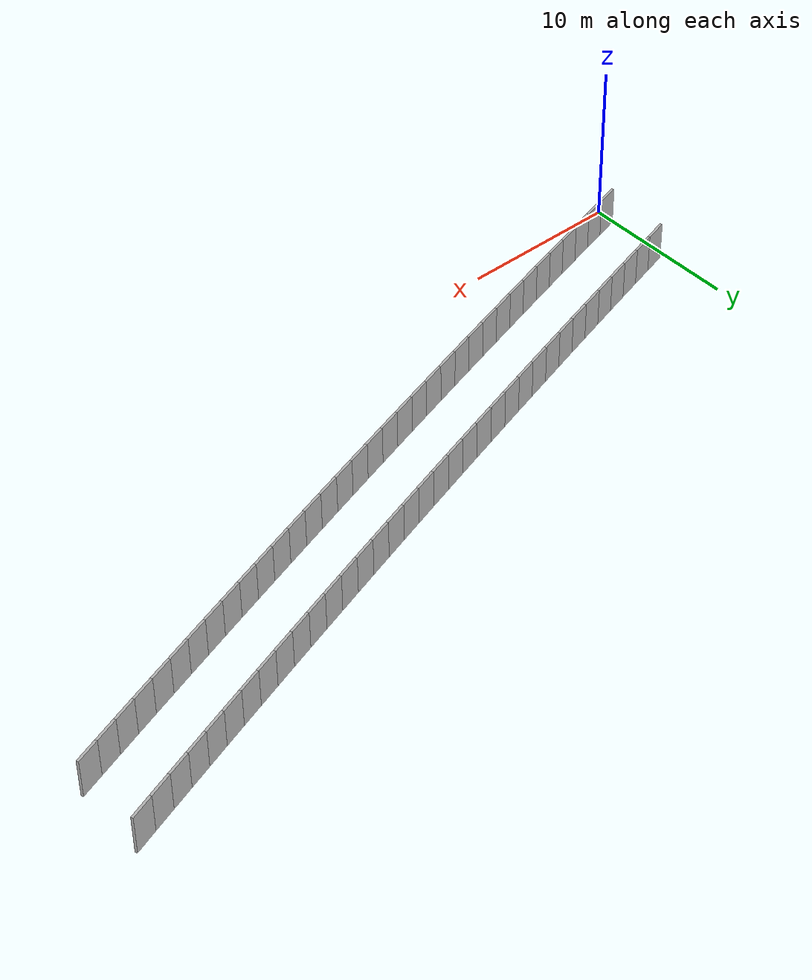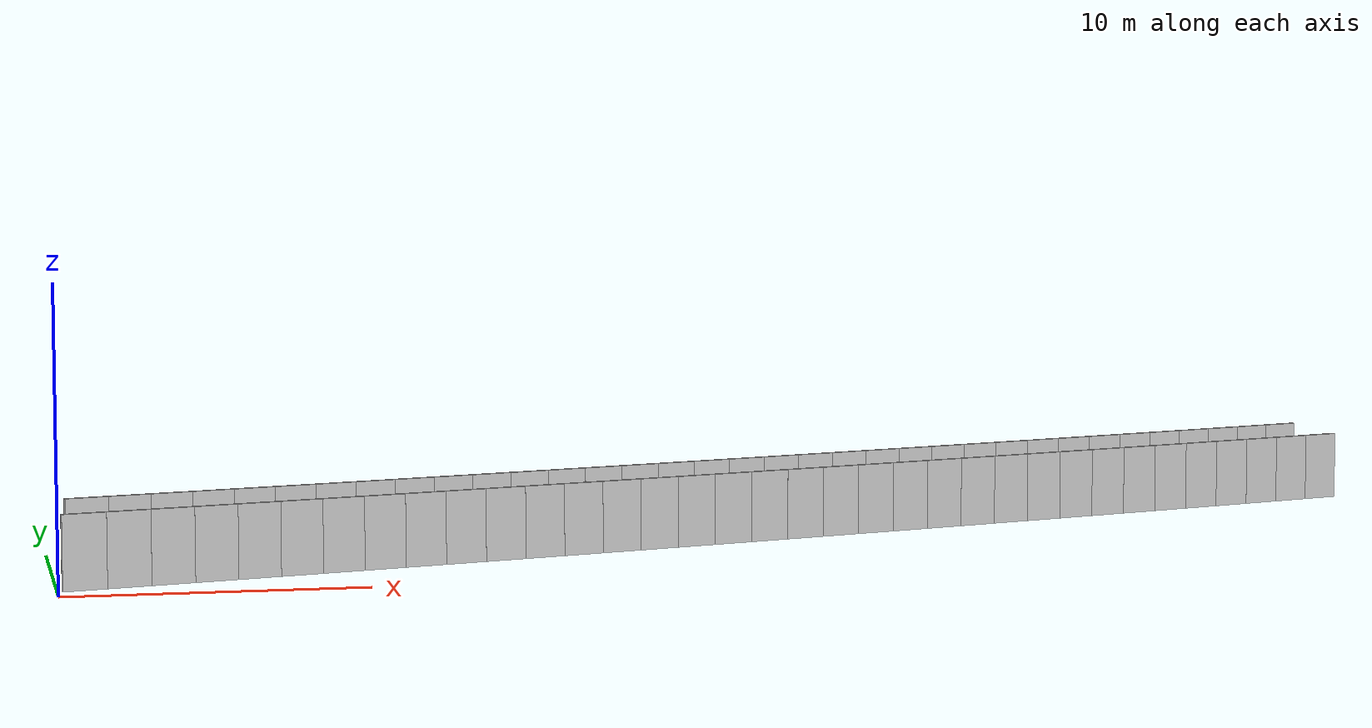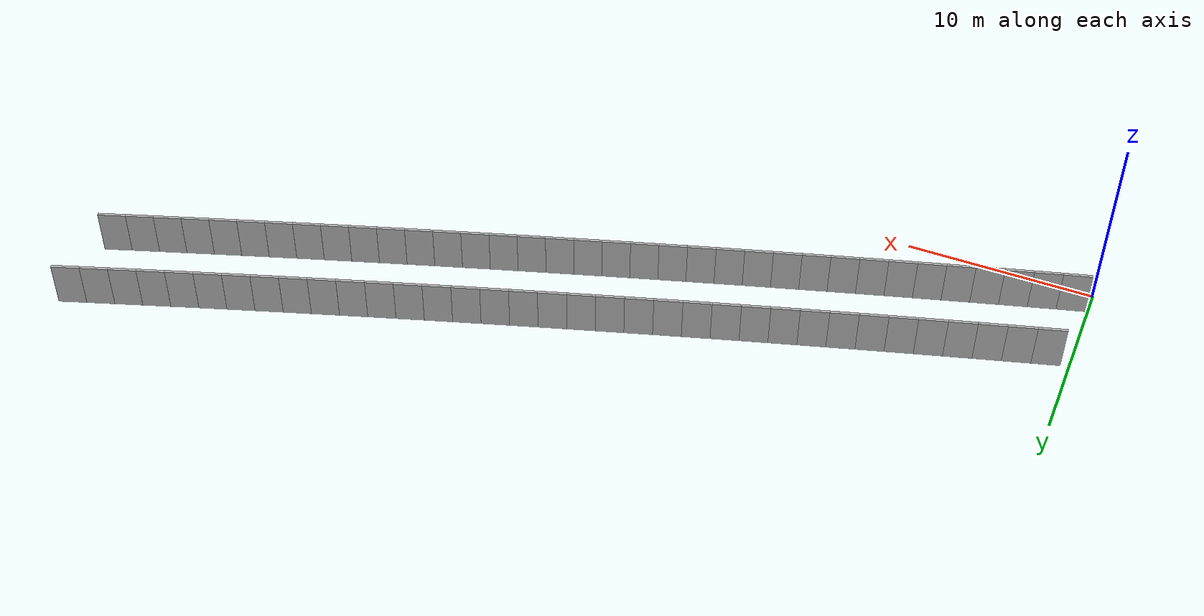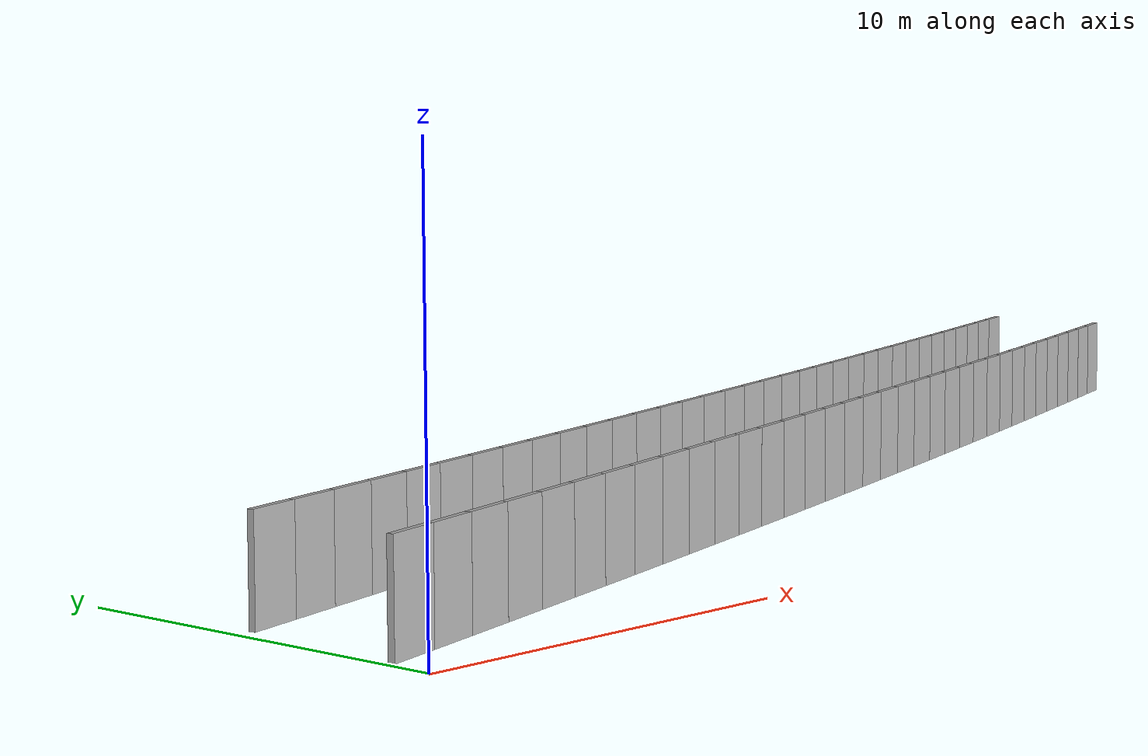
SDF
<?xml version="1.0" ?>
<sdf version="1.6">
  <model name="sps_3104">
    <pose frame="">0 0 0 0 -0 0</pose>
    <static>1</static>
    <self_collide>0</self_collide>
    <allow_auto_disable>0</allow_auto_disable>
    <link name="Wall3841">
      <kinematic>0</kinematic>
      <gravity>1</gravity>
      <self_collide>0</self_collide>
      <collision name="collision">
        <geometry>
          <box>
            <size>1.49653 0.15 2.5</size>
          </box>
        </geometry>
        <pose frame="">0 0 0 0 -0 0</pose>
      </collision>
      <visual name="visual">
        <geometry>
          <box>
            <size>1.49653 0.15 2.5</size>
          </box>
        </geometry>
        <pose frame="">0 0 0 0 -0 0</pose>
        <cast_shadows>1</cast_shadows>
        <transparency>0.0</transparency>
      </visual>
      <pose frame="">1.16445 5.77467 1.25 0 -0 0.279745</pose>
    </link>
    <link name="Wall3842">
      <kinematic>0</kinematic>
      <gravity>1</gravity>
      <self_collide>0</self_collide>
      <collision name="collision">
        <geometry>
          <box>
            <size>1.49666 0.15 2.5</size>
          </box>
        </geometry>
        <pose frame="">0 0 0 0 -0 0</pose>
      </collision>
      <visual name="visual">
        <geometry>
          <box>
            <size>1.49666 0.15 2.5</size>
          </box>
        </geometry>
        <pose frame="">0 0 0 0 -0 0</pose>
        <cast_shadows>1</cast_shadows>
        <transparency>0.0</transparency>
      </visual>
      <pose frame="">2.60253 6.18907 1.25 0 -0 0.281375</pose>
    </link>
    <link name="Wall3843">
      <kinematic>0</kinematic>
      <gravity>1</gravity>
      <self_collide>0</self_collide>
      <collision name="collision">
        <geometry>
          <box>
            <size>1.49653 0.15 2.5</size>
          </box>
        </geometry>
        <pose frame="">0 0 0 0 -0 0</pose>
      </collision>
      <visual name="visual">
        <geometry>
          <box>
            <size>1.49653 0.15 2.5</size>
          </box>
        </geometry>
        <pose frame="">0 0 0 0 -0 0</pose>
        <cast_shadows>1</cast_shadows>
        <transparency>0.0</transparency>
      </visual>
      <pose frame="">4.03994 6.60579 1.25 0 -0 0.282972</pose>
    </link>
    <link name="Wall3844">
      <kinematic>0</kinematic>
      <gravity>1</gravity>
      <self_collide>0</self_collide>
      <collision name="collision">
        <geometry>
          <box>
            <size>1.49659 0.15 2.5</size>
          </box>
        </geometry>
        <pose frame="">0 0 0 0 -0 0</pose>
      </collision>
      <visual name="visual">
        <geometry>
          <box>
            <size>1.49659 0.15 2.5</size>
          </box>
        </geometry>
        <pose frame="">0 0 0 0 -0 0</pose>
        <cast_shadows>1</cast_shadows>
        <transparency>0.0</transparency>
      </visual>
      <pose frame="">5.47665 7.02479 1.25 0 -0 0.284574</pose>
    </link>
    <link name="Wall3845">
      <kinematic>0</kinematic>
      <gravity>1</gravity>
      <self_collide>0</self_collide>
      <collision name="collision">
        <geometry>
          <box>
            <size>1.49641 0.15 2.5</size>
          </box>
        </geometry>
        <pose frame="">0 0 0 0 -0 0</pose>
      </collision>
      <visual name="visual">
        <geometry>
          <box>
            <size>1.49641 0.15 2.5</size>
          </box>
        </geometry>
        <pose frame="">0 0 0 0 -0 0</pose>
        <cast_shadows>1</cast_shadows>
        <transparency>0.0</transparency>
      </visual>
      <pose frame="">6.91265 7.446 1.25 0 -0 0.286054</pose>
    </link>
    <link name="Wall3846">
      <kinematic>0</kinematic>
      <gravity>1</gravity>
      <self_collide>0</self_collide>
      <collision name="collision">
        <geometry>
          <box>
            <size>1.49649 0.15 2.5</size>
          </box>
        </geometry>
        <pose frame="">0 0 0 0 -0 0</pose>
      </collision>
      <visual name="visual">
        <geometry>
          <box>
            <size>1.49649 0.15 2.5</size>
          </box>
        </geometry>
        <pose frame="">0 0 0 0 -0 0</pose>
        <cast_shadows>1</cast_shadows>
        <transparency>0.0</transparency>
      </visual>
      <pose frame="">8.34795 7.8694 1.25 0 -0 0.287656</pose>
    </link>
    <link name="Wall3847">
      <kinematic>0</kinematic>
      <gravity>1</gravity>
      <self_collide>0</self_collide>
      <collision name="collision">
        <geometry>
          <box>
            <size>1.4966 0.15 2.5</size>
          </box>
        </geometry>
        <pose frame="">0 0 0 0 -0 0</pose>
      </collision>
      <visual name="visual">
        <geometry>
          <box>
            <size>1.4966 0.15 2.5</size>
          </box>
        </geometry>
        <pose frame="">0 0 0 0 -0 0</pose>
        <cast_shadows>1</cast_shadows>
        <transparency>0.0</transparency>
      </visual>
      <pose frame="">9.78265 8.29518 1.25 0 -0 0.289336</pose>
    </link>
    <link name="Wall3848">
      <kinematic>0</kinematic>
      <gravity>1</gravity>
      <self_collide>0</self_collide>
      <collision name="collision">
        <geometry>
          <box>
            <size>1.4967 0.15 2.5</size>
          </box>
        </geometry>
        <pose frame="">0 0 0 0 -0 0</pose>
      </collision>
      <visual name="visual">
        <geometry>
          <box>
            <size>1.4967 0.15 2.5</size>
          </box>
        </geometry>
        <pose frame="">0 0 0 0 -0 0</pose>
        <cast_shadows>1</cast_shadows>
        <transparency>0.0</transparency>
      </visual>
      <pose frame="">11.2168 8.72328 1.25 0 -0 0.290847</pose>
    </link>
    <link name="Wall3849">
      <kinematic>0</kinematic>
      <gravity>1</gravity>
      <self_collide>0</self_collide>
      <collision name="collision">
        <geometry>
          <box>
            <size>1.49634 0.15 2.5</size>
          </box>
        </geometry>
        <pose frame="">0 0 0 0 -0 0</pose>
      </collision>
      <visual name="visual">
        <geometry>
          <box>
            <size>1.49634 0.15 2.5</size>
          </box>
        </geometry>
        <pose frame="">0 0 0 0 -0 0</pose>
        <cast_shadows>1</cast_shadows>
        <transparency>0.0</transparency>
      </visual>
      <pose frame="">12.6501 9.15358 1.25 0 -0 0.292453</pose>
    </link>
    <link name="Wall3850">
      <kinematic>0</kinematic>
      <gravity>1</gravity>
      <self_collide>0</self_collide>
      <collision name="collision">
        <geometry>
          <box>
            <size>1.49656 0.15 2.5</size>
          </box>
        </geometry>
        <pose frame="">0 0 0 0 -0 0</pose>
      </collision>
      <visual name="visual">
        <geometry>
          <box>
            <size>1.49656 0.15 2.5</size>
          </box>
        </geometry>
        <pose frame="">0 0 0 0 -0 0</pose>
        <cast_shadows>1</cast_shadows>
        <transparency>0.0</transparency>
      </visual>
      <pose frame="">14.0827 9.58607 1.25 0 -0 0.293941</pose>
    </link>
    <link name="Wall3851">
      <kinematic>0</kinematic>
      <gravity>1</gravity>
      <self_collide>0</self_collide>
      <collision name="collision">
        <geometry>
          <box>
            <size>1.49651 0.15 2.5</size>
          </box>
        </geometry>
        <pose frame="">0 0 0 0 -0 0</pose>
      </collision>
      <visual name="visual">
        <geometry>
          <box>
            <size>1.49651 0.15 2.5</size>
          </box>
        </geometry>
        <pose frame="">0 0 0 0 -0 0</pose>
        <cast_shadows>1</cast_shadows>
        <transparency>0.0</transparency>
      </visual>
      <pose frame="">15.5146 10.0209 1.25 0 -0 0.295656</pose>
    </link>
    <link name="Wall3852">
      <kinematic>0</kinematic>
      <gravity>1</gravity>
      <self_collide>0</self_collide>
      <collision name="collision">
        <geometry>
          <box>
            <size>1.49651 0.15 2.5</size>
          </box>
        </geometry>
        <pose frame="">0 0 0 0 -0 0</pose>
      </collision>
      <visual name="visual">
        <geometry>
          <box>
            <size>1.49651 0.15 2.5</size>
          </box>
        </geometry>
        <pose frame="">0 0 0 0 -0 0</pose>
        <cast_shadows>1</cast_shadows>
        <transparency>0.0</transparency>
      </visual>
      <pose frame="">16.9459 10.4581 1.25 0 -0 0.29732</pose>
    </link>
    <link name="Wall3853">
      <kinematic>0</kinematic>
      <gravity>1</gravity>
      <self_collide>0</self_collide>
      <collision name="collision">
        <geometry>
          <box>
            <size>1.49667 0.15 2.5</size>
          </box>
        </geometry>
        <pose frame="">0 0 0 0 -0 0</pose>
      </collision>
      <visual name="visual">
        <geometry>
          <box>
            <size>1.49667 0.15 2.5</size>
          </box>
        </geometry>
        <pose frame="">0 0 0 0 -0 0</pose>
        <cast_shadows>1</cast_shadows>
        <transparency>0.0</transparency>
      </visual>
      <pose frame="">18.3765 10.8976 1.25 0 -0 0.298781</pose>
    </link>
    <link name="Wall3854">
      <kinematic>0</kinematic>
      <gravity>1</gravity>
      <self_collide>0</self_collide>
      <collision name="collision">
        <geometry>
          <box>
            <size>1.49646 0.15 2.5</size>
          </box>
        </geometry>
        <pose frame="">0 0 0 0 -0 0</pose>
      </collision>
      <visual name="visual">
        <geometry>
          <box>
            <size>1.49646 0.15 2.5</size>
          </box>
        </geometry>
        <pose frame="">0 0 0 0 -0 0</pose>
        <cast_shadows>1</cast_shadows>
        <transparency>0.0</transparency>
      </visual>
      <pose frame="">19.8064 11.3393 1.25 0 -0 0.300403</pose>
    </link>
    <link name="Wall3855">
      <kinematic>0</kinematic>
      <gravity>1</gravity>
      <self_collide>0</self_collide>
      <collision name="collision">
        <geometry>
          <box>
            <size>1.49647 0.15 2.5</size>
          </box>
        </geometry>
        <pose frame="">0 0 0 0 -0 0</pose>
      </collision>
      <visual name="visual">
        <geometry>
          <box>
            <size>1.49647 0.15 2.5</size>
          </box>
        </geometry>
        <pose frame="">0 0 0 0 -0 0</pose>
        <cast_shadows>1</cast_shadows>
        <transparency>0.0</transparency>
      </visual>
      <pose frame="">21.2355 11.7832 1.25 0 -0 0.301938</pose>
    </link>
    <link name="Wall3856">
      <kinematic>0</kinematic>
      <gravity>1</gravity>
      <self_collide>0</self_collide>
      <collision name="collision">
        <geometry>
          <box>
            <size>1.49665 0.15 2.5</size>
          </box>
        </geometry>
        <pose frame="">0 0 0 0 -0 0</pose>
      </collision>
      <visual name="visual">
        <geometry>
          <box>
            <size>1.49665 0.15 2.5</size>
          </box>
        </geometry>
        <pose frame="">0 0 0 0 -0 0</pose>
        <cast_shadows>1</cast_shadows>
        <transparency>0.0</transparency>
      </visual>
      <pose frame="">22.664 12.2294 1.25 0 -0 0.303566</pose>
    </link>
    <link name="Wall3857">
      <kinematic>0</kinematic>
      <gravity>1</gravity>
      <self_collide>0</self_collide>
      <collision name="collision">
        <geometry>
          <box>
            <size>1.49644 0.15 2.5</size>
          </box>
        </geometry>
        <pose frame="">0 0 0 0 -0 0</pose>
      </collision>
      <visual name="visual">
        <geometry>
          <box>
            <size>1.49644 0.15 2.5</size>
          </box>
        </geometry>
        <pose frame="">0 0 0 0 -0 0</pose>
        <cast_shadows>1</cast_shadows>
        <transparency>0.0</transparency>
      </visual>
      <pose frame="">24.0918 12.6778 1.25 0 -0 0.305021</pose>
    </link>
    <link name="Wall3858">
      <kinematic>0</kinematic>
      <gravity>1</gravity>
      <self_collide>0</self_collide>
      <collision name="collision">
        <geometry>
          <box>
            <size>1.49648 0.15 2.5</size>
          </box>
        </geometry>
        <pose frame="">0 0 0 0 -0 0</pose>
      </collision>
      <visual name="visual">
        <geometry>
          <box>
            <size>1.49648 0.15 2.5</size>
          </box>
        </geometry>
        <pose frame="">0 0 0 0 -0 0</pose>
        <cast_shadows>1</cast_shadows>
        <transparency>0.0</transparency>
      </visual>
      <pose frame="">25.5188 13.1284 1.25 0 -0 0.306724</pose>
    </link>
    <link name="Wall3859">
      <kinematic>0</kinematic>
      <gravity>1</gravity>
      <self_collide>0</self_collide>
      <collision name="collision">
        <geometry>
          <box>
            <size>1.49654 0.15 2.5</size>
          </box>
        </geometry>
        <pose frame="">0 0 0 0 -0 0</pose>
      </collision>
      <visual name="visual">
        <geometry>
          <box>
            <size>1.49654 0.15 2.5</size>
          </box>
        </geometry>
        <pose frame="">0 0 0 0 -0 0</pose>
        <cast_shadows>1</cast_shadows>
        <transparency>0.0</transparency>
      </visual>
      <pose frame="">26.9451 13.5814 1.25 0 -0 0.308337</pose>
    </link>
    <link name="Wall3860">
      <kinematic>0</kinematic>
      <gravity>1</gravity>
      <self_collide>0</self_collide>
      <collision name="collision">
        <geometry>
          <box>
            <size>1.49646 0.15 2.5</size>
          </box>
        </geometry>
        <pose frame="">0 0 0 0 -0 0</pose>
      </collision>
      <visual name="visual">
        <geometry>
          <box>
            <size>1.49646 0.15 2.5</size>
          </box>
        </geometry>
        <pose frame="">0 0 0 0 -0 0</pose>
        <cast_shadows>1</cast_shadows>
        <transparency>0.0</transparency>
      </visual>
      <pose frame="">28.3707 14.0366 1.25 0 -0 0.309768</pose>
    </link>
    <link name="Wall3861">
      <kinematic>0</kinematic>
      <gravity>1</gravity>
      <self_collide>0</self_collide>
      <collision name="collision">
        <geometry>
          <box>
            <size>1.49656 0.15 2.5</size>
          </box>
        </geometry>
        <pose frame="">0 0 0 0 -0 0</pose>
      </collision>
      <visual name="visual">
        <geometry>
          <box>
            <size>1.49656 0.15 2.5</size>
          </box>
        </geometry>
        <pose frame="">0 0 0 0 -0 0</pose>
        <cast_shadows>1</cast_shadows>
        <transparency>0.0</transparency>
      </visual>
      <pose frame="">29.7956 14.494 1.25 0 -0 0.311459</pose>
    </link>
    <link name="Wall3862">
      <kinematic>0</kinematic>
      <gravity>1</gravity>
      <self_collide>0</self_collide>
      <collision name="collision">
        <geometry>
          <box>
            <size>1.49677 0.15 2.5</size>
          </box>
        </geometry>
        <pose frame="">0 0 0 0 -0 0</pose>
      </collision>
      <visual name="visual">
        <geometry>
          <box>
            <size>1.49677 0.15 2.5</size>
          </box>
        </geometry>
        <pose frame="">0 0 0 0 -0 0</pose>
        <cast_shadows>1</cast_shadows>
        <transparency>0.0</transparency>
      </visual>
      <pose frame="">31.2198 14.9538 1.25 0 -0 0.313085</pose>
    </link>
    <link name="Wall3863">
      <kinematic>0</kinematic>
      <gravity>1</gravity>
      <self_collide>0</self_collide>
      <collision name="collision">
        <geometry>
          <box>
            <size>1.49652 0.15 2.5</size>
          </box>
        </geometry>
        <pose frame="">0 0 0 0 -0 0</pose>
      </collision>
      <visual name="visual">
        <geometry>
          <box>
            <size>1.49652 0.15 2.5</size>
          </box>
        </geometry>
        <pose frame="">0 0 0 0 -0 0</pose>
        <cast_shadows>1</cast_shadows>
        <transparency>0.0</transparency>
      </visual>
      <pose frame="">32.6434 15.4159 1.25 0 -0 0.314683</pose>
    </link>
    <link name="Wall3864">
      <kinematic>0</kinematic>
      <gravity>1</gravity>
      <self_collide>0</self_collide>
      <collision name="collision">
        <geometry>
          <box>
            <size>1.49657 0.15 2.5</size>
          </box>
        </geometry>
        <pose frame="">0 0 0 0 -0 0</pose>
      </collision>
      <visual name="visual">
        <geometry>
          <box>
            <size>1.49657 0.15 2.5</size>
          </box>
        </geometry>
        <pose frame="">0 0 0 0 -0 0</pose>
        <cast_shadows>1</cast_shadows>
        <transparency>0.0</transparency>
      </visual>
      <pose frame="">34.0661 15.8802 1.25 0 -0 0.316218</pose>
    </link>
    <link name="Wall3865">
      <kinematic>0</kinematic>
      <gravity>1</gravity>
      <self_collide>0</self_collide>
      <collision name="collision">
        <geometry>
          <box>
            <size>1.49627 0.15 2.5</size>
          </box>
        </geometry>
        <pose frame="">0 0 0 0 -0 0</pose>
      </collision>
      <visual name="visual">
        <geometry>
          <box>
            <size>1.49627 0.15 2.5</size>
          </box>
        </geometry>
        <pose frame="">0 0 0 0 -0 0</pose>
        <cast_shadows>1</cast_shadows>
        <transparency>0.0</transparency>
      </visual>
      <pose frame="">35.4879 16.3466 1.25 0 -0 0.3177</pose>
    </link>
    <link name="Wall3866">
      <kinematic>0</kinematic>
      <gravity>1</gravity>
      <self_collide>0</self_collide>
      <collision name="collision">
        <geometry>
          <box>
            <size>1.49657 0.15 2.5</size>
          </box>
        </geometry>
        <pose frame="">0 0 0 0 -0 0</pose>
      </collision>
      <visual name="visual">
        <geometry>
          <box>
            <size>1.49657 0.15 2.5</size>
          </box>
        </geometry>
        <pose frame="">0 0 0 0 -0 0</pose>
        <cast_shadows>1</cast_shadows>
        <transparency>0.0</transparency>
      </visual>
      <pose frame="">36.909 16.8153 1.25 0 -0 0.319481</pose>
    </link>
    <link name="Wall3867">
      <kinematic>0</kinematic>
      <gravity>1</gravity>
      <self_collide>0</self_collide>
      <collision name="collision">
        <geometry>
          <box>
            <size>1.4966 0.15 2.5</size>
          </box>
        </geometry>
        <pose frame="">0 0 0 0 -0 0</pose>
      </collision>
      <visual name="visual">
        <geometry>
          <box>
            <size>1.4966 0.15 2.5</size>
          </box>
        </geometry>
        <pose frame="">0 0 0 0 -0 0</pose>
        <cast_shadows>1</cast_shadows>
        <transparency>0.0</transparency>
      </visual>
      <pose frame="">38.3296 17.2864 1.25 0 -0 0.320977</pose>
    </link>
    <link name="Wall3868">
      <kinematic>0</kinematic>
      <gravity>1</gravity>
      <self_collide>0</self_collide>
      <collision name="collision">
        <geometry>
          <box>
            <size>1.49662 0.15 2.5</size>
          </box>
        </geometry>
        <pose frame="">0 0 0 0 -0 0</pose>
      </collision>
      <visual name="visual">
        <geometry>
          <box>
            <size>1.49662 0.15 2.5</size>
          </box>
        </geometry>
        <pose frame="">0 0 0 0 -0 0</pose>
        <cast_shadows>1</cast_shadows>
        <transparency>0.0</transparency>
      </visual>
      <pose frame="">39.7494 17.7597 1.25 0 -0 0.322563</pose>
    </link>
    <link name="Wall3869">
      <kinematic>0</kinematic>
      <gravity>1</gravity>
      <self_collide>0</self_collide>
      <collision name="collision">
        <geometry>
          <box>
            <size>1.49649 0.15 2.5</size>
          </box>
        </geometry>
        <pose frame="">0 0 0 0 -0 0</pose>
      </collision>
      <visual name="visual">
        <geometry>
          <box>
            <size>1.49649 0.15 2.5</size>
          </box>
        </geometry>
        <pose frame="">0 0 0 0 -0 0</pose>
        <cast_shadows>1</cast_shadows>
        <transparency>0.0</transparency>
      </visual>
      <pose frame="">41.1684 18.2352 1.25 0 -0 0.324098</pose>
    </link>
    <link name="Wall3870">
      <kinematic>0</kinematic>
      <gravity>1</gravity>
      <self_collide>0</self_collide>
      <collision name="collision">
        <geometry>
          <box>
            <size>1.49652 0.15 2.5</size>
          </box>
        </geometry>
        <pose frame="">0 0 0 0 -0 0</pose>
      </collision>
      <visual name="visual">
        <geometry>
          <box>
            <size>1.49652 0.15 2.5</size>
          </box>
        </geometry>
        <pose frame="">0 0 0 0 -0 0</pose>
        <cast_shadows>1</cast_shadows>
        <transparency>0.0</transparency>
      </visual>
      <pose frame="">42.5865 18.713 1.25 0 -0 0.325813</pose>
    </link>
    <link name="Wall3871">
      <kinematic>0</kinematic>
      <gravity>1</gravity>
      <self_collide>0</self_collide>
      <collision name="collision">
        <geometry>
          <box>
            <size>1.49647 0.15 2.5</size>
          </box>
        </geometry>
        <pose frame="">0 0 0 0 -0 0</pose>
      </collision>
      <visual name="visual">
        <geometry>
          <box>
            <size>1.49647 0.15 2.5</size>
          </box>
        </geometry>
        <pose frame="">0 0 0 0 -0 0</pose>
        <cast_shadows>1</cast_shadows>
        <transparency>0.0</transparency>
      </visual>
      <pose frame="">44.004 19.193 1.25 0 -0 0.327245</pose>
    </link>
    <link name="Wall3872">
      <kinematic>0</kinematic>
      <gravity>1</gravity>
      <self_collide>0</self_collide>
      <collision name="collision">
        <geometry>
          <box>
            <size>1.4966 0.15 2.5</size>
          </box>
        </geometry>
        <pose frame="">0 0 0 0 -0 0</pose>
      </collision>
      <visual name="visual">
        <geometry>
          <box>
            <size>1.4966 0.15 2.5</size>
          </box>
        </geometry>
        <pose frame="">0 0 0 0 -0 0</pose>
        <cast_shadows>1</cast_shadows>
        <transparency>0.0</transparency>
      </visual>
      <pose frame="">45.4207 19.6752 1.25 0 -0 0.328895</pose>
    </link>
    <link name="Wall3873">
      <kinematic>0</kinematic>
      <gravity>1</gravity>
      <self_collide>0</self_collide>
      <collision name="collision">
        <geometry>
          <box>
            <size>1.49656 0.15 2.5</size>
          </box>
        </geometry>
        <pose frame="">0 0 0 0 -0 0</pose>
      </collision>
      <visual name="visual">
        <geometry>
          <box>
            <size>1.49656 0.15 2.5</size>
          </box>
        </geometry>
        <pose frame="">0 0 0 0 -0 0</pose>
        <cast_shadows>1</cast_shadows>
        <transparency>0.0</transparency>
      </visual>
      <pose frame="">46.8367 20.1597 1.25 0 -0 0.330456</pose>
    </link>
    <link name="Wall3874">
      <kinematic>0</kinematic>
      <gravity>1</gravity>
      <self_collide>0</self_collide>
      <collision name="collision">
        <geometry>
          <box>
            <size>1.49652 0.15 2.5</size>
          </box>
        </geometry>
        <pose frame="">0 0 0 0 -0 0</pose>
      </collision>
      <visual name="visual">
        <geometry>
          <box>
            <size>1.49652 0.15 2.5</size>
          </box>
        </geometry>
        <pose frame="">0 0 0 0 -0 0</pose>
        <cast_shadows>1</cast_shadows>
        <transparency>0.0</transparency>
      </visual>
      <pose frame="">48.2519 20.6464 1.25 0 -0 0.332017</pose>
    </link>
    <link name="Wall3875">
      <kinematic>0</kinematic>
      <gravity>1</gravity>
      <self_collide>0</self_collide>
      <collision name="collision">
        <geometry>
          <box>
            <size>1.49657 0.15 2.5</size>
          </box>
        </geometry>
        <pose frame="">0 0 0 0 -0 0</pose>
      </collision>
      <visual name="visual">
        <geometry>
          <box>
            <size>1.49657 0.15 2.5</size>
          </box>
        </geometry>
        <pose frame="">0 0 0 0 -0 0</pose>
        <cast_shadows>1</cast_shadows>
        <transparency>0.0</transparency>
      </visual>
      <pose frame="">49.6663 21.1354 1.25 0 -0 0.333732</pose>
    </link>
    <link name="Wall7615">
      <kinematic>0</kinematic>
      <gravity>1</gravity>
      <self_collide>0</self_collide>
      <collision name="collision">
        <geometry>
          <box>
            <size>1.50318 0.15 2.5</size>
          </box>
        </geometry>
        <pose frame="">0 0 0 0 -0 0</pose>
      </collision>
      <visual name="visual">
        <geometry>
          <box>
            <size>1.50318 0.15 2.5</size>
          </box>
        </geometry>
        <pose frame="">0 0 0 0 -0 0</pose>
        <cast_shadows>1</cast_shadows>
        <transparency>0.0</transparency>
      </visual>
      <pose frame="">0.865348 1.38209 1.25 0 -0 0.278222</pose>
    </link>
    <link name="Wall7616">
      <kinematic>0</kinematic>
      <gravity>1</gravity>
      <self_collide>0</self_collide>
      <collision name="collision">
        <geometry>
          <box>
            <size>1.50306 0.15 2.5</size>
          </box>
        </geometry>
        <pose frame="">0 0 0 0 -0 0</pose>
      </collision>
      <visual name="visual">
        <geometry>
          <box>
            <size>1.50306 0.15 2.5</size>
          </box>
        </geometry>
        <pose frame="">0 0 0 0 -0 0</pose>
        <cast_shadows>1</cast_shadows>
        <transparency>0.0</transparency>
      </visual>
      <pose frame="">2.31036 1.796 1.25 0 -0 0.279722</pose>
    </link>
    <link name="Wall7617">
      <kinematic>0</kinematic>
      <gravity>1</gravity>
      <self_collide>0</self_collide>
      <collision name="collision">
        <geometry>
          <box>
            <size>1.50309 0.15 2.5</size>
          </box>
        </geometry>
        <pose frame="">0 0 0 0 -0 0</pose>
      </collision>
      <visual name="visual">
        <geometry>
          <box>
            <size>1.50309 0.15 2.5</size>
          </box>
        </geometry>
        <pose frame="">0 0 0 0 -0 0</pose>
        <cast_shadows>1</cast_shadows>
        <transparency>0.0</transparency>
      </visual>
      <pose frame="">3.75466 2.2122 1.25 0 -0 0.281406</pose>
    </link>
    <link name="Wall7618">
      <kinematic>0</kinematic>
      <gravity>1</gravity>
      <self_collide>0</self_collide>
      <collision name="collision">
        <geometry>
          <box>
            <size>1.50316 0.15 2.5</size>
          </box>
        </geometry>
        <pose frame="">0 0 0 0 -0 0</pose>
      </collision>
      <visual name="visual">
        <geometry>
          <box>
            <size>1.50316 0.15 2.5</size>
          </box>
        </geometry>
        <pose frame="">0 0 0 0 -0 0</pose>
        <cast_shadows>1</cast_shadows>
        <transparency>0.0</transparency>
      </visual>
      <pose frame="">5.19836 2.63069 1.25 0 -0 0.282873</pose>
    </link>
    <link name="Wall7619">
      <kinematic>0</kinematic>
      <gravity>1</gravity>
      <self_collide>0</self_collide>
      <collision name="collision">
        <geometry>
          <box>
            <size>1.50302 0.15 2.5</size>
          </box>
        </geometry>
        <pose frame="">0 0 0 0 -0 0</pose>
      </collision>
      <visual name="visual">
        <geometry>
          <box>
            <size>1.50302 0.15 2.5</size>
          </box>
        </geometry>
        <pose frame="">0 0 0 0 -0 0</pose>
        <cast_shadows>1</cast_shadows>
        <transparency>0.0</transparency>
      </visual>
      <pose frame="">6.64135 3.05147 1.25 0 -0 0.284592</pose>
    </link>
    <link name="Wall7620">
      <kinematic>0</kinematic>
      <gravity>1</gravity>
      <self_collide>0</self_collide>
      <collision name="collision">
        <geometry>
          <box>
            <size>1.50313 0.15 2.5</size>
          </box>
        </geometry>
        <pose frame="">0 0 0 0 -0 0</pose>
      </collision>
      <visual name="visual">
        <geometry>
          <box>
            <size>1.50313 0.15 2.5</size>
          </box>
        </geometry>
        <pose frame="">0 0 0 0 -0 0</pose>
        <cast_shadows>1</cast_shadows>
        <transparency>0.0</transparency>
      </visual>
      <pose frame="">8.08364 3.47459 1.25 0 -0 0.286136</pose>
    </link>
    <link name="Wall7621">
      <kinematic>0</kinematic>
      <gravity>1</gravity>
      <self_collide>0</self_collide>
      <collision name="collision">
        <geometry>
          <box>
            <size>1.50298 0.15 2.5</size>
          </box>
        </geometry>
        <pose frame="">0 0 0 0 -0 0</pose>
      </collision>
      <visual name="visual">
        <geometry>
          <box>
            <size>1.50298 0.15 2.5</size>
          </box>
        </geometry>
        <pose frame="">0 0 0 0 -0 0</pose>
        <cast_shadows>1</cast_shadows>
        <transparency>0.0</transparency>
      </visual>
      <pose frame="">9.52526 3.89992 1.25 0 -0 0.287649</pose>
    </link>
    <link name="Wall7622">
      <kinematic>0</kinematic>
      <gravity>1</gravity>
      <self_collide>0</self_collide>
      <collision name="collision">
        <geometry>
          <box>
            <size>1.50307 0.15 2.5</size>
          </box>
        </geometry>
        <pose frame="">0 0 0 0 -0 0</pose>
      </collision>
      <visual name="visual">
        <geometry>
          <box>
            <size>1.50307 0.15 2.5</size>
          </box>
        </geometry>
        <pose frame="">0 0 0 0 -0 0</pose>
        <cast_shadows>1</cast_shadows>
        <transparency>0.0</transparency>
      </visual>
      <pose frame="">10.9662 4.3275 1.25 0 -0 0.289283</pose>
    </link>
    <link name="Wall7623">
      <kinematic>0</kinematic>
      <gravity>1</gravity>
      <self_collide>0</self_collide>
      <collision name="collision">
        <geometry>
          <box>
            <size>1.50307 0.15 2.5</size>
          </box>
        </geometry>
        <pose frame="">0 0 0 0 -0 0</pose>
      </collision>
      <visual name="visual">
        <geometry>
          <box>
            <size>1.50307 0.15 2.5</size>
          </box>
        </geometry>
        <pose frame="">0 0 0 0 -0 0</pose>
        <cast_shadows>1</cast_shadows>
        <transparency>0.0</transparency>
      </visual>
      <pose frame="">12.4065 4.7574 1.25 0 -0 0.29085</pose>
    </link>
    <link name="Wall7624">
      <kinematic>0</kinematic>
      <gravity>1</gravity>
      <self_collide>0</self_collide>
      <collision name="collision">
        <geometry>
          <box>
            <size>1.50304 0.15 2.5</size>
          </box>
        </geometry>
        <pose frame="">0 0 0 0 -0 0</pose>
      </collision>
      <visual name="visual">
        <geometry>
          <box>
            <size>1.50304 0.15 2.5</size>
          </box>
        </geometry>
        <pose frame="">0 0 0 0 -0 0</pose>
        <cast_shadows>1</cast_shadows>
        <transparency>0.0</transparency>
      </visual>
      <pose frame="">13.846 5.18959 1.25 0 -0 0.292468</pose>
    </link>
    <link name="Wall7625">
      <kinematic>0</kinematic>
      <gravity>1</gravity>
      <self_collide>0</self_collide>
      <collision name="collision">
        <geometry>
          <box>
            <size>1.5031 0.15 2.5</size>
          </box>
        </geometry>
        <pose frame="">0 0 0 0 -0 0</pose>
      </collision>
      <visual name="visual">
        <geometry>
          <box>
            <size>1.5031 0.15 2.5</size>
          </box>
        </geometry>
        <pose frame="">0 0 0 0 -0 0</pose>
        <cast_shadows>1</cast_shadows>
        <transparency>0.0</transparency>
      </visual>
      <pose frame="">15.2849 5.62407 1.25 0 -0 0.294024</pose>
    </link>
    <link name="Wall7626">
      <kinematic>0</kinematic>
      <gravity>1</gravity>
      <self_collide>0</self_collide>
      <collision name="collision">
        <geometry>
          <box>
            <size>1.50322 0.15 2.5</size>
          </box>
        </geometry>
        <pose frame="">0 0 0 0 -0 0</pose>
      </collision>
      <visual name="visual">
        <geometry>
          <box>
            <size>1.50322 0.15 2.5</size>
          </box>
        </geometry>
        <pose frame="">0 0 0 0 -0 0</pose>
        <cast_shadows>1</cast_shadows>
        <transparency>0.0</transparency>
      </visual>
      <pose frame="">16.7233 6.06077 1.25 0 -0 0.295529</pose>
    </link>
    <link name="Wall7627">
      <kinematic>0</kinematic>
      <gravity>1</gravity>
      <self_collide>0</self_collide>
      <collision name="collision">
        <geometry>
          <box>
            <size>1.50293 0.15 2.5</size>
          </box>
        </geometry>
        <pose frame="">0 0 0 0 -0 0</pose>
      </collision>
      <visual name="visual">
        <geometry>
          <box>
            <size>1.50293 0.15 2.5</size>
          </box>
        </geometry>
        <pose frame="">0 0 0 0 -0 0</pose>
        <cast_shadows>1</cast_shadows>
        <transparency>0.0</transparency>
      </visual>
      <pose frame="">18.1608 6.49989 1.25 0 -0 0.297412</pose>
    </link>
    <link name="Wall7628">
      <kinematic>0</kinematic>
      <gravity>1</gravity>
      <self_collide>0</self_collide>
      <collision name="collision">
        <geometry>
          <box>
            <size>1.50321 0.15 2.5</size>
          </box>
        </geometry>
        <pose frame="">0 0 0 0 -0 0</pose>
      </collision>
      <visual name="visual">
        <geometry>
          <box>
            <size>1.50321 0.15 2.5</size>
          </box>
        </geometry>
        <pose frame="">0 0 0 0 -0 0</pose>
        <cast_shadows>1</cast_shadows>
        <transparency>0.0</transparency>
      </visual>
      <pose frame="">19.5976 6.9413 1.25 0 -0 0.298714</pose>
    </link>
    <link name="Wall7629">
      <kinematic>0</kinematic>
      <gravity>1</gravity>
      <self_collide>0</self_collide>
      <collision name="collision">
        <geometry>
          <box>
            <size>1.50312 0.15 2.5</size>
          </box>
        </geometry>
        <pose frame="">0 0 0 0 -0 0</pose>
      </collision>
      <visual name="visual">
        <geometry>
          <box>
            <size>1.50312 0.15 2.5</size>
          </box>
        </geometry>
        <pose frame="">0 0 0 0 -0 0</pose>
        <cast_shadows>1</cast_shadows>
        <transparency>0.0</transparency>
      </visual>
      <pose frame="">21.0338 7.3849 1.25 0 -0 0.300433</pose>
    </link>
    <link name="Wall7630">
      <kinematic>0</kinematic>
      <gravity>1</gravity>
      <self_collide>0</self_collide>
      <collision name="collision">
        <geometry>
          <box>
            <size>1.50299 0.15 2.5</size>
          </box>
        </geometry>
        <pose frame="">0 0 0 0 -0 0</pose>
      </collision>
      <visual name="visual">
        <geometry>
          <box>
            <size>1.50299 0.15 2.5</size>
          </box>
        </geometry>
        <pose frame="">0 0 0 0 -0 0</pose>
        <cast_shadows>1</cast_shadows>
        <transparency>0.0</transparency>
      </visual>
      <pose frame="">22.4692 7.83079 1.25 0 -0 0.301947</pose>
    </link>
    <link name="Wall7631">
      <kinematic>0</kinematic>
      <gravity>1</gravity>
      <self_collide>0</self_collide>
      <collision name="collision">
        <geometry>
          <box>
            <size>1.50314 0.15 2.5</size>
          </box>
        </geometry>
        <pose frame="">0 0 0 0 -0 0</pose>
      </collision>
      <visual name="visual">
        <geometry>
          <box>
            <size>1.50314 0.15 2.5</size>
          </box>
        </geometry>
        <pose frame="">0 0 0 0 -0 0</pose>
        <cast_shadows>1</cast_shadows>
        <transparency>0.0</transparency>
      </visual>
      <pose frame="">23.9039 8.27898 1.25 0 -0 0.303619</pose>
    </link>
    <link name="Wall7632">
      <kinematic>0</kinematic>
      <gravity>1</gravity>
      <self_collide>0</self_collide>
      <collision name="collision">
        <geometry>
          <box>
            <size>1.50316 0.15 2.5</size>
          </box>
        </geometry>
        <pose frame="">0 0 0 0 -0 0</pose>
      </collision>
      <visual name="visual">
        <geometry>
          <box>
            <size>1.50316 0.15 2.5</size>
          </box>
        </geometry>
        <pose frame="">0 0 0 0 -0 0</pose>
        <cast_shadows>1</cast_shadows>
        <transparency>0.0</transparency>
      </visual>
      <pose frame="">25.3379 8.72938 1.25 0 -0 0.305019</pose>
    </link>
    <link name="Wall7633">
      <kinematic>0</kinematic>
      <gravity>1</gravity>
      <self_collide>0</self_collide>
      <collision name="collision">
        <geometry>
          <box>
            <size>1.503 0.15 2.5</size>
          </box>
        </geometry>
        <pose frame="">0 0 0 0 -0 0</pose>
      </collision>
      <visual name="visual">
        <geometry>
          <box>
            <size>1.503 0.15 2.5</size>
          </box>
        </geometry>
        <pose frame="">0 0 0 0 -0 0</pose>
        <cast_shadows>1</cast_shadows>
        <transparency>0.0</transparency>
      </visual>
      <pose frame="">26.7712 9.18208 1.25 0 -0 0.306841</pose>
    </link>
    <link name="Wall7634">
      <kinematic>0</kinematic>
      <gravity>1</gravity>
      <self_collide>0</self_collide>
      <collision name="collision">
        <geometry>
          <box>
            <size>1.50326 0.15 2.5</size>
          </box>
        </geometry>
        <pose frame="">0 0 0 0 -0 0</pose>
      </collision>
      <visual name="visual">
        <geometry>
          <box>
            <size>1.50326 0.15 2.5</size>
          </box>
        </geometry>
        <pose frame="">0 0 0 0 -0 0</pose>
        <cast_shadows>1</cast_shadows>
        <transparency>0.0</transparency>
      </visual>
      <pose frame="">28.2038 9.63707 1.25 0 -0 0.308192</pose>
    </link>
    <link name="Wall7635">
      <kinematic>0</kinematic>
      <gravity>1</gravity>
      <self_collide>0</self_collide>
      <collision name="collision">
        <geometry>
          <box>
            <size>1.50302 0.15 2.5</size>
          </box>
        </geometry>
        <pose frame="">0 0 0 0 -0 0</pose>
      </collision>
      <visual name="visual">
        <geometry>
          <box>
            <size>1.50302 0.15 2.5</size>
          </box>
        </geometry>
        <pose frame="">0 0 0 0 -0 0</pose>
        <cast_shadows>1</cast_shadows>
        <transparency>0.0</transparency>
      </visual>
      <pose frame="">29.6358 10.0943 1.25 0 -0 0.309949</pose>
    </link>
    <link name="Wall7636">
      <kinematic>0</kinematic>
      <gravity>1</gravity>
      <self_collide>0</self_collide>
      <collision name="collision">
        <geometry>
          <box>
            <size>1.50309 0.15 2.5</size>
          </box>
        </geometry>
        <pose frame="">0 0 0 0 -0 0</pose>
      </collision>
      <visual name="visual">
        <geometry>
          <box>
            <size>1.50309 0.15 2.5</size>
          </box>
        </geometry>
        <pose frame="">0 0 0 0 -0 0</pose>
        <cast_shadows>1</cast_shadows>
        <transparency>0.0</transparency>
      </visual>
      <pose frame="">31.0669 10.5538 1.25 0 -0 0.311426</pose>
    </link>
    <link name="Wall7637">
      <kinematic>0</kinematic>
      <gravity>1</gravity>
      <self_collide>0</self_collide>
      <collision name="collision">
        <geometry>
          <box>
            <size>1.50303 0.15 2.5</size>
          </box>
        </geometry>
        <pose frame="">0 0 0 0 -0 0</pose>
      </collision>
      <visual name="visual">
        <geometry>
          <box>
            <size>1.50303 0.15 2.5</size>
          </box>
        </geometry>
        <pose frame="">0 0 0 0 -0 0</pose>
        <cast_shadows>1</cast_shadows>
        <transparency>0.0</transparency>
      </visual>
      <pose frame="">32.4972 11.0155 1.25 0 -0 0.313018</pose>
    </link>
    <link name="Wall7638">
      <kinematic>0</kinematic>
      <gravity>1</gravity>
      <self_collide>0</self_collide>
      <collision name="collision">
        <geometry>
          <box>
            <size>1.50324 0.15 2.5</size>
          </box>
        </geometry>
        <pose frame="">0 0 0 0 -0 0</pose>
      </collision>
      <visual name="visual">
        <geometry>
          <box>
            <size>1.50324 0.15 2.5</size>
          </box>
        </geometry>
        <pose frame="">0 0 0 0 -0 0</pose>
        <cast_shadows>1</cast_shadows>
        <transparency>0.0</transparency>
      </visual>
      <pose frame="">33.927 11.4795 1.25 0 -0 0.314637</pose>
    </link>
    <link name="Wall7639">
      <kinematic>0</kinematic>
      <gravity>1</gravity>
      <self_collide>0</self_collide>
      <collision name="collision">
        <geometry>
          <box>
            <size>1.50311 0.15 2.5</size>
          </box>
        </geometry>
        <pose frame="">0 0 0 0 -0 0</pose>
      </collision>
      <visual name="visual">
        <geometry>
          <box>
            <size>1.50311 0.15 2.5</size>
          </box>
        </geometry>
        <pose frame="">0 0 0 0 -0 0</pose>
        <cast_shadows>1</cast_shadows>
        <transparency>0.0</transparency>
      </visual>
      <pose frame="">35.356 11.9458 1.25 0 -0 0.316203</pose>
    </link>
    <link name="Wall7640">
      <kinematic>0</kinematic>
      <gravity>1</gravity>
      <self_collide>0</self_collide>
      <collision name="collision">
        <geometry>
          <box>
            <size>1.50304 0.15 2.5</size>
          </box>
        </geometry>
        <pose frame="">0 0 0 0 -0 0</pose>
      </collision>
      <visual name="visual">
        <geometry>
          <box>
            <size>1.50304 0.15 2.5</size>
          </box>
        </geometry>
        <pose frame="">0 0 0 0 -0 0</pose>
        <cast_shadows>1</cast_shadows>
        <transparency>0.0</transparency>
      </visual>
      <pose frame="">36.7842 12.4143 1.25 0 -0 0.317757</pose>
    </link>
    <link name="Wall7641">
      <kinematic>0</kinematic>
      <gravity>1</gravity>
      <self_collide>0</self_collide>
      <collision name="collision">
        <geometry>
          <box>
            <size>1.50303 0.15 2.5</size>
          </box>
        </geometry>
        <pose frame="">0 0 0 0 -0 0</pose>
      </collision>
      <visual name="visual">
        <geometry>
          <box>
            <size>1.50303 0.15 2.5</size>
          </box>
        </geometry>
        <pose frame="">0 0 0 0 -0 0</pose>
        <cast_shadows>1</cast_shadows>
        <transparency>0.0</transparency>
      </visual>
      <pose frame="">38.2116 12.8851 1.25 0 -0 0.319426</pose>
    </link>
    <link name="Wall7642">
      <kinematic>0</kinematic>
      <gravity>1</gravity>
      <self_collide>0</self_collide>
      <collision name="collision">
        <geometry>
          <box>
            <size>1.50297 0.15 2.5</size>
          </box>
        </geometry>
        <pose frame="">0 0 0 0 -0 0</pose>
      </collision>
      <visual name="visual">
        <geometry>
          <box>
            <size>1.50297 0.15 2.5</size>
          </box>
        </geometry>
        <pose frame="">0 0 0 0 -0 0</pose>
        <cast_shadows>1</cast_shadows>
        <transparency>0.0</transparency>
      </visual>
      <pose frame="">39.6382 13.3582 1.25 0 -0 0.32098</pose>
    </link>
    <link name="Wall7643">
      <kinematic>0</kinematic>
      <gravity>1</gravity>
      <self_collide>0</self_collide>
      <collision name="collision">
        <geometry>
          <box>
            <size>1.50309 0.15 2.5</size>
          </box>
        </geometry>
        <pose frame="">0 0 0 0 -0 0</pose>
      </collision>
      <visual name="visual">
        <geometry>
          <box>
            <size>1.50309 0.15 2.5</size>
          </box>
        </geometry>
        <pose frame="">0 0 0 0 -0 0</pose>
        <cast_shadows>1</cast_shadows>
        <transparency>0.0</transparency>
      </visual>
      <pose frame="">41.0641 13.8335 1.25 0 -0 0.322495</pose>
    </link>
    <link name="Wall7644">
      <kinematic>0</kinematic>
      <gravity>1</gravity>
      <self_collide>0</self_collide>
      <collision name="collision">
        <geometry>
          <box>
            <size>1.50311 0.15 2.5</size>
          </box>
        </geometry>
        <pose frame="">0 0 0 0 -0 0</pose>
      </collision>
      <visual name="visual">
        <geometry>
          <box>
            <size>1.50311 0.15 2.5</size>
          </box>
        </geometry>
        <pose frame="">0 0 0 0 -0 0</pose>
        <cast_shadows>1</cast_shadows>
        <transparency>0.0</transparency>
      </visual>
      <pose frame="">42.4893 14.3111 1.25 0 -0 0.324203</pose>
    </link>
    <link name="Wall7645">
      <kinematic>0</kinematic>
      <gravity>1</gravity>
      <self_collide>0</self_collide>
      <collision name="collision">
        <geometry>
          <box>
            <size>1.503 0.15 2.5</size>
          </box>
        </geometry>
        <pose frame="">0 0 0 0 -0 0</pose>
      </collision>
      <visual name="visual">
        <geometry>
          <box>
            <size>1.503 0.15 2.5</size>
          </box>
        </geometry>
        <pose frame="">0 0 0 0 -0 0</pose>
        <cast_shadows>1</cast_shadows>
        <transparency>0.0</transparency>
      </visual>
      <pose frame="">43.9137 14.791 1.25 0 -0 0.32577</pose>
    </link>
    <link name="Wall7646">
      <kinematic>0</kinematic>
      <gravity>1</gravity>
      <self_collide>0</self_collide>
      <collision name="collision">
        <geometry>
          <box>
            <size>1.50317 0.15 2.5</size>
          </box>
        </geometry>
        <pose frame="">0 0 0 0 -0 0</pose>
      </collision>
      <visual name="visual">
        <geometry>
          <box>
            <size>1.50317 0.15 2.5</size>
          </box>
        </geometry>
        <pose frame="">0 0 0 0 -0 0</pose>
        <cast_shadows>1</cast_shadows>
        <transparency>0.0</transparency>
      </visual>
      <pose frame="">45.3373 15.2731 1.25 0 -0 0.327233</pose>
    </link>
    <link name="Wall7647">
      <kinematic>0</kinematic>
      <gravity>1</gravity>
      <self_collide>0</self_collide>
      <collision name="collision">
        <geometry>
          <box>
            <size>1.50322 0.15 2.5</size>
          </box>
        </geometry>
        <pose frame="">0 0 0 0 -0 0</pose>
      </collision>
      <visual name="visual">
        <geometry>
          <box>
            <size>1.50322 0.15 2.5</size>
          </box>
        </geometry>
        <pose frame="">0 0 0 0 -0 0</pose>
        <cast_shadows>1</cast_shadows>
        <transparency>0.0</transparency>
      </visual>
      <pose frame="">46.7603 15.7575 1.25 0 -0 0.328979</pose>
    </link>
    <link name="Wall7648">
      <kinematic>0</kinematic>
      <gravity>1</gravity>
      <self_collide>0</self_collide>
      <collision name="collision">
        <geometry>
          <box>
            <size>1.50291 0.15 2.5</size>
          </box>
        </geometry>
        <pose frame="">0 0 0 0 -0 0</pose>
      </collision>
      <visual name="visual">
        <geometry>
          <box>
            <size>1.50291 0.15 2.5</size>
          </box>
        </geometry>
        <pose frame="">0 0 0 0 -0 0</pose>
        <cast_shadows>1</cast_shadows>
        <transparency>0.0</transparency>
      </visual>
      <pose frame="">48.1825 16.2441 1.25 0 -0 0.330381</pose>
    </link>
    <link name="Wall7649">
      <kinematic>0</kinematic>
      <gravity>1</gravity>
      <self_collide>0</self_collide>
      <collision name="collision">
        <geometry>
          <box>
            <size>1.50309 0.15 2.5</size>
          </box>
        </geometry>
        <pose frame="">0 0 0 0 -0 0</pose>
      </collision>
      <visual name="visual">
        <geometry>
          <box>
            <size>1.50309 0.15 2.5</size>
          </box>
        </geometry>
        <pose frame="">0 0 0 0 -0 0</pose>
        <cast_shadows>1</cast_shadows>
        <transparency>0.0</transparency>
      </visual>
      <pose frame="">49.6038 16.7329 1.25 0 -0 0.332101</pose>
    </link>
  </model>
</sdf>
